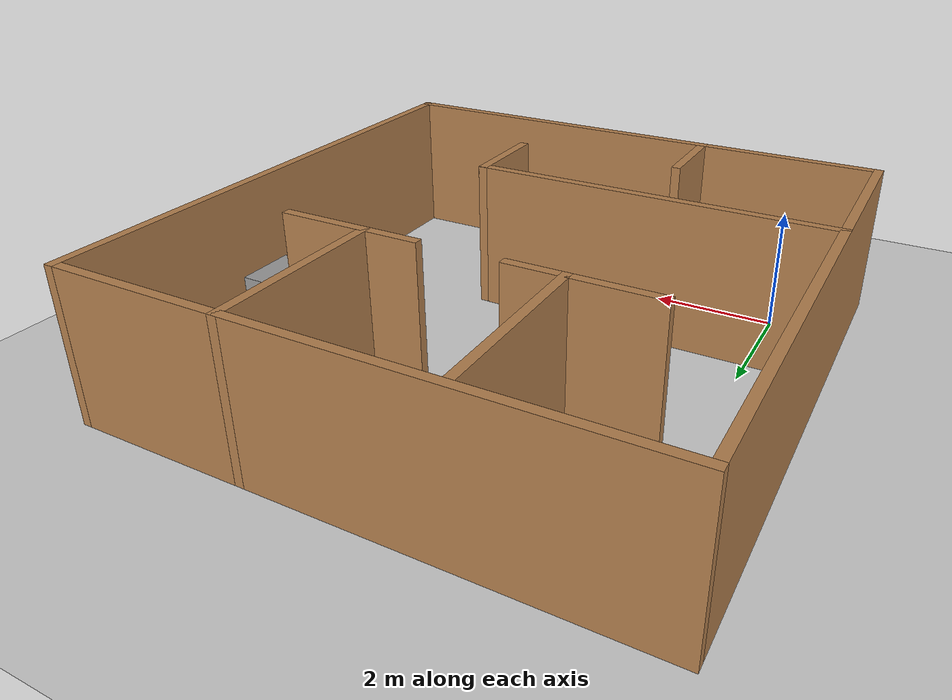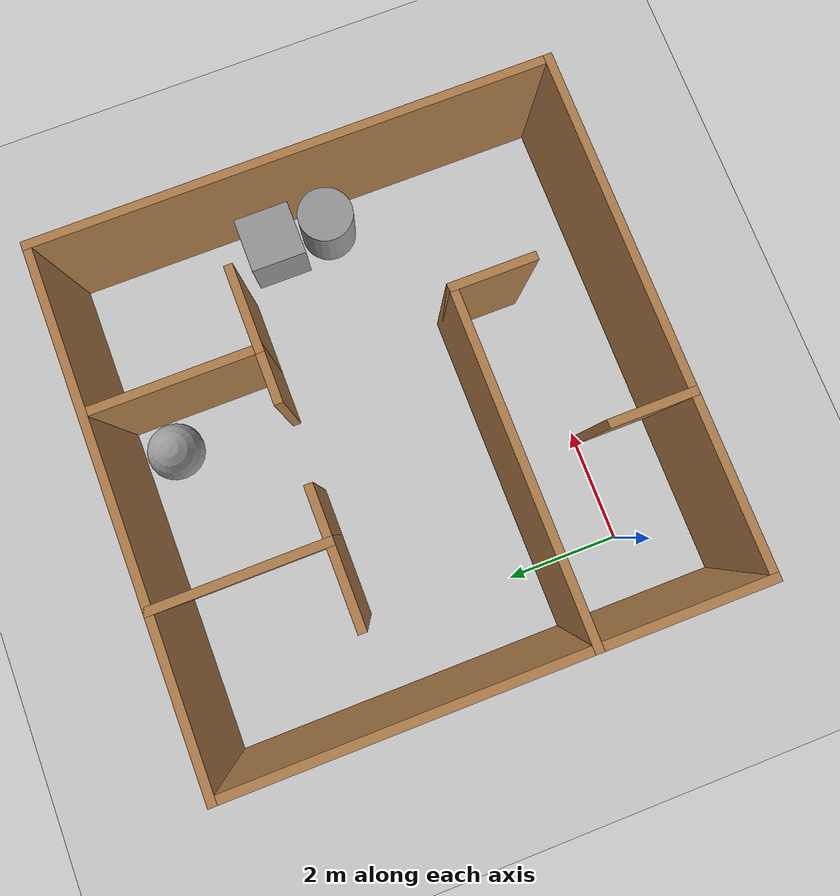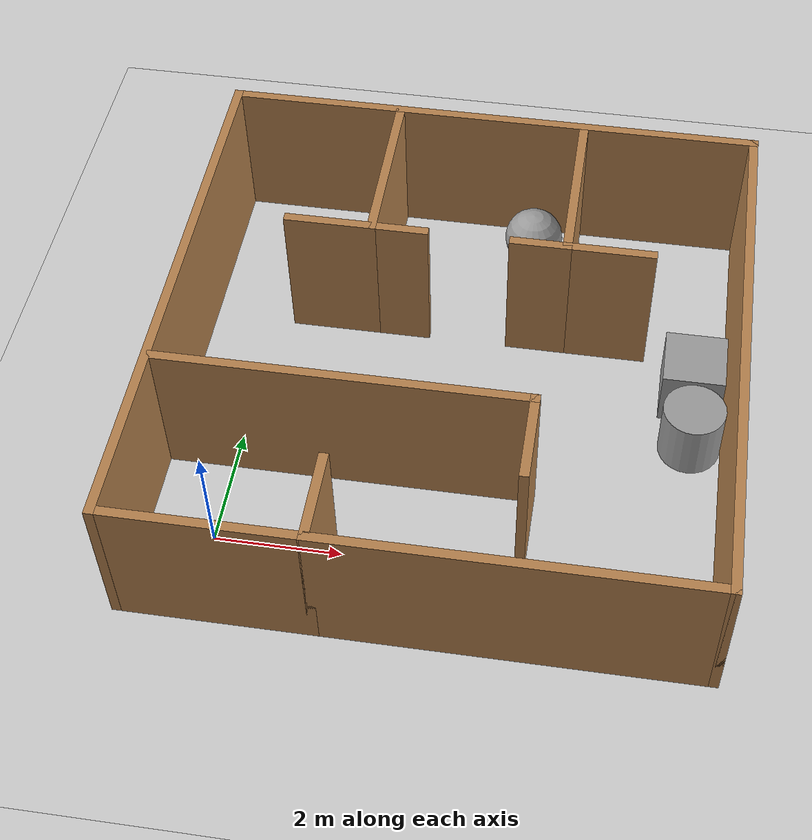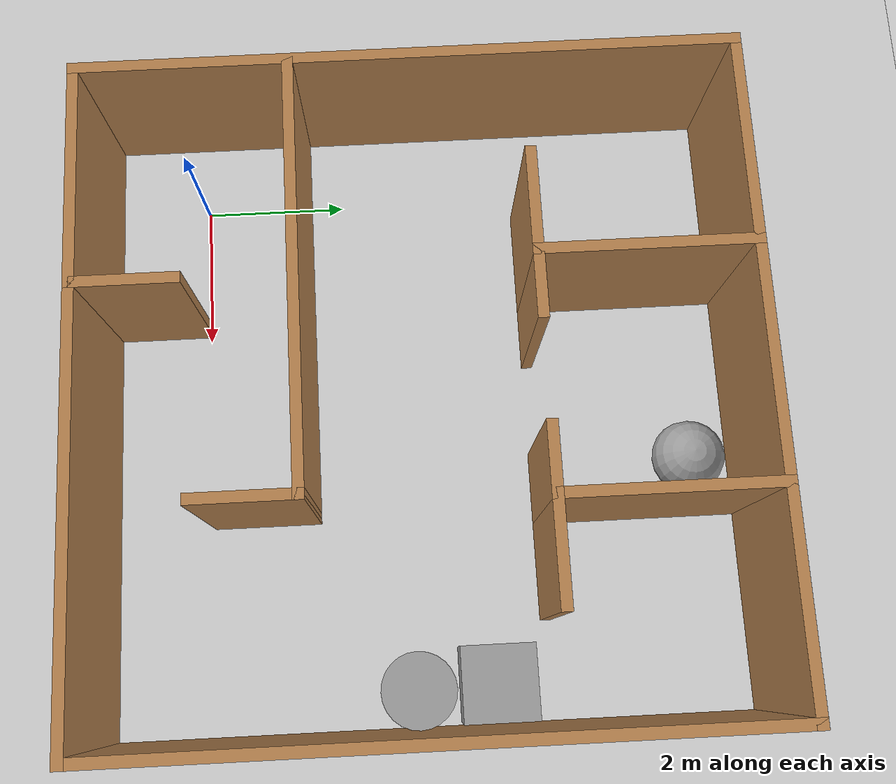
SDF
<sdf version="1.6">
 <world name="default">
  <light name="sun" type="directional">
   <pose>0 0 10 0 -0 0</pose>
   <diffuse>0.8 0.8 0.8 1</diffuse>
   <specular>0.2 0.2 0.2 1</specular>
   <attenuation>
    <range>1000</range>
    <constant>0.9</constant>
    <linear>0.01</linear>
    <quadratic>0.001</quadratic>
   </attenuation>
   <direction>-0.5 0.1 -0.9</direction>
  </light>
  <model name="ground_plane">
   <static>1</static>
   <link name="link">
    <collision name="collision">
     <geometry><plane><normal>0 0 1</normal><size>100 100</size></plane></geometry>
     <surface>
      <contact><collide_bitmask>65535</collide_bitmask></contact>
      <friction><ode><mu>100</mu><mu2>50</mu2></ode></friction>
     </surface>
    </collision>
    <visual name="visual">
     <cast_shadows>0</cast_shadows>
     <geometry><plane><normal>0 0 1</normal><size>100 100</size></plane></geometry>
     <material>
      <script><uri>file://media/materials/scripts/gazebo.material</uri><name>Gazebo/Grey</name></script>
     </material>
    </visual>
   </link>
  </model>
  <gravity>0 0 -9.8</gravity>
  <magnetic_field>6e-06 2.3e-05 -4.2e-05</magnetic_field>
  <atmosphere type="adiabatic"/>
  <physics name="default_physics" default="0" type="ode">
   <max_step_size>0.001</max_step_size>
   <real_time_factor>1</real_time_factor>
   <real_time_update_rate>1000</real_time_update_rate>
  </physics>
  <scene><ambient>0.4 0.4 0.4 1</ambient><background>0.7 0.7 0.7 1</background><shadows>1</shadows></scene>
  <audio><device>default</device></audio>
  <spherical_coordinates>
   <surface_model>EARTH_WGS84</surface_model>
   <latitude_deg>0</latitude_deg>
   <longitude_deg>0</longitude_deg>
   <elevation>0</elevation>
   <heading_deg>0</heading_deg>
  </spherical_coordinates>
  <model name="woody">
   <pose>3.28807 3.04448 0 0 -0 0</pose>
   <link name="Wall_10">
    <collision name="Wall_10_Collision">
     <geometry><box><size>9 0.15 2.5</size></box></geometry>
     <pose>0 0 1.25 0 -0 0</pose>
    </collision>
    <visual name="Wall_10_Visual">
     <pose>0 0 1.25 0 -0 0</pose>
     <geometry><box><size>9 0.15 2.5</size></box></geometry>
     <material>
      <script><uri>file://media/materials/scripts/gazebo.material</uri><name>Gazebo/Wood</name></script>
      <ambient>1 1 1 1</ambient>
     </material>
     <meta><layer>0</layer></meta>
    </visual>
    <pose>-0 4.425 0 0 -0 3.14159</pose>
   </link>
   <link name="Wall_13">
    <collision name="Wall_13_Collision">
     <geometry><box><size>6 0.15 2.5</size></box></geometry>
     <pose>0 0 1.25 0 -0 0</pose>
    </collision>
    <visual name="Wall_13_Visual">
     <pose>0 0 1.25 0 -0 0</pose>
     <geometry><box><size>6 0.15 2.5</size></box></geometry>
     <material>
      <script><uri>file://media/materials/scripts/gazebo.material</uri><name>Gazebo/Wood</name></script>
      <ambient>1 1 1 1</ambient>
     </material>
     <meta><layer>0</layer></meta>
    </visual>
    <pose>-1.5 -1.575 0 0 -0 0</pose>
   </link>
   <link name="Wall_14">
    <collision name="Wall_14_Collision">
     <geometry><box><size>1.5 0.15 2.5</size></box></geometry>
     <pose>0 0 1.25 0 -0 0</pose>
    </collision>
    <visual name="Wall_14_Visual">
     <pose>0 0 1.25 0 -0 0</pose>
     <geometry><box><size>1.5 0.15 2.5</size></box></geometry>
     <material>
      <script><uri>file://media/materials/scripts/gazebo.material</uri><name>Gazebo/Wood</name></script>
      <ambient>1 1 1 1</ambient>
     </material>
     <meta><layer>0</layer></meta>
    </visual>
    <pose>1.425 -2.25 0 0 -0 -1.5708</pose>
   </link>
   <link name="Wall_17">
    <collision name="Wall_17_Collision">
     <geometry><box><size>3 0.15 2.5</size></box></geometry>
     <pose>0 0 1.25 0 -0 0</pose>
    </collision>
    <visual name="Wall_17_Visual">
     <pose>0 0 1.25 0 -0 0</pose>
     <geometry><box><size>3 0.15 2.5</size></box></geometry>
     <material>
      <script><uri>file://media/materials/scripts/gazebo.material</uri><name>Gazebo/Wood</name></script>
      <ambient>1 1 1 1</ambient>
     </material>
     <meta><layer>0</layer></meta>
    </visual>
    <pose>-1.575 3 0 0 -0 -1.5708</pose>
   </link>
   <link name="Wall_2">
    <collision name="Wall_2_Collision">
     <geometry><box><size>3 0.15 2.5</size></box></geometry>
     <pose>0 0 1.25 0 -0 0</pose>
    </collision>
    <visual name="Wall_2_Visual">
     <pose>0 0 1.25 0 -0 0</pose>
     <geometry><box><size>3 0.15 2.5</size></box></geometry>
     <material>
      <script><uri>file://media/materials/scripts/gazebo.material</uri><name>Gazebo/Wood</name></script>
      <ambient>1 1 1 1</ambient>
     </material>
     <meta><layer>0</layer></meta>
    </visual>
    <pose>-2.85 -4.425 0 0 -0 0</pose>
   </link>
   <link name="Wall_20">
    <collision name="Wall_20_Collision">
     <geometry><box><size>1 0.15 2.5</size></box></geometry>
     <pose>0 0 1.25 0 -0 0</pose>
    </collision>
    <visual name="Wall_20_Visual">
     <pose>0 0 1.25 0 -0 0</pose>
     <geometry><box><size>1 0.15 2.5</size></box></geometry>
     <material>
      <script><uri>file://media/materials/scripts/gazebo.material</uri><name>Gazebo/Wood</name></script>
      <ambient>1 1 1 1</ambient>
     </material>
     <meta><layer>0</layer></meta>
    </visual>
    <pose>-1.15 1.575 0 0 -0 0</pose>
   </link>
   <link name="Wall_23">
    <collision name="Wall_23_Collision">
     <geometry><box><size>3 0.15 2.5</size></box></geometry>
     <pose>0 0 1.25 0 -0 0</pose>
    </collision>
    <visual name="Wall_23_Visual">
     <pose>0 0 1.25 0 -0 0</pose>
     <geometry><box><size>3 0.15 2.5</size></box></geometry>
     <material>
      <script><uri>file://media/materials/scripts/gazebo.material</uri><name>Gazebo/Wood</name></script>
      <ambient>1 1 1 1</ambient>
     </material>
     <meta><layer>0</layer></meta>
    </visual>
    <pose>1.575 3 0 0 -0 -1.5708</pose>
   </link>
   <link name="Wall_24">
    <collision name="Wall_24_Collision">
     <geometry><box><size>1 0.15 2.5</size></box></geometry>
     <pose>0 0 1.25 0 -0 0</pose>
    </collision>
    <visual name="Wall_24_Visual">
     <pose>0 0 1.25 0 -0 0</pose>
     <geometry><box><size>1 0.15 2.5</size></box></geometry>
     <material>
      <script><uri>file://media/materials/scripts/gazebo.material</uri><name>Gazebo/Wood</name></script>
      <ambient>1 1 1 1</ambient>
     </material>
     <meta><layer>0</layer></meta>
    </visual>
    <pose>1.15 1.575 0 0 -0 3.14159</pose>
   </link>
   <link name="Wall_26">
    <collision name="Wall_26_Collision">
     <geometry><box><size>1.5 0.15 2.5</size></box></geometry>
     <pose>0 0 1.25 0 -0 0</pose>
    </collision>
    <visual name="Wall_26_Visual">
     <pose>0 0 1.25 0 -0 0</pose>
     <geometry><box><size>1.5 0.15 2.5</size></box></geometry>
     <material>
      <script><uri>file://media/materials/scripts/gazebo.material</uri><name>Gazebo/Wood</name></script>
      <ambient>1 1 1 1</ambient>
     </material>
     <meta><layer>0</layer></meta>
    </visual>
    <pose>2.25 1.575 0 0 -0 0</pose>
   </link>
   <link name="Wall_28">
    <collision name="Wall_28_Collision">
     <geometry><box><size>1.5 0.15 2.5</size></box></geometry>
     <pose>0 0 1.25 0 -0 0</pose>
    </collision>
    <visual name="Wall_28_Visual">
     <pose>0 0 1.25 0 -0 0</pose>
     <geometry><box><size>1.5 0.15 2.5</size></box></geometry>
     <material>
      <script><uri>file://media/materials/scripts/gazebo.material</uri><name>Gazebo/Wood</name></script>
      <ambient>1 1 1 1</ambient>
     </material>
     <meta><layer>0</layer></meta>
    </visual>
    <pose>-2.25 1.575 0 0 -0 3.14159</pose>
   </link>
   <link name="Wall_3">
    <collision name="Wall_3_Collision">
     <geometry><box><size>1.5 0.15 2.5</size></box></geometry>
     <pose>0 0 1.25 0 -0 0</pose>
    </collision>
    <visual name="Wall_3_Visual">
     <pose>0 0 1.25 0 -0 0</pose>
     <geometry><box><size>1.5 0.15 2.5</size></box></geometry>
     <material>
      <script><uri>file://media/materials/scripts/gazebo.material</uri><name>Gazebo/Wood</name></script>
      <ambient>1 1 1 1</ambient>
     </material>
     <meta><layer>0</layer></meta>
    </visual>
    <pose>-1.425 -3.75 0 0 -0 1.5708</pose>
   </link>
   <link name="Wall_32">
    <collision name="Wall_32_Collision">
     <geometry><box><size>9 0.15 2.5</size></box></geometry>
     <pose>0 0 1.25 0 -0 0</pose>
    </collision>
    <visual name="Wall_32_Visual">
     <pose>0 0 1.25 0 -0 0</pose>
     <geometry><box><size>9 0.15 2.5</size></box></geometry>
     <material>
      <script><uri>file://media/materials/scripts/gazebo.material</uri><name>Gazebo/Wood</name></script>
      <ambient>1 1 1 1</ambient>
     </material>
     <meta><layer>0</layer></meta>
    </visual>
    <pose>-4.425 0 0 0 -0 -1.5708</pose>
   </link>
   <link name="Wall_5">
    <collision name="Wall_5_Collision">
     <geometry><box><size>6 0.15 2.5</size></box></geometry>
     <pose>0 0 1.25 0 -0 0</pose>
    </collision>
    <visual name="Wall_5_Visual">
     <pose>0 0 1.25 0 -0 0</pose>
     <geometry><box><size>6 0.15 2.5</size></box></geometry>
     <material>
      <script><uri>file://media/materials/scripts/gazebo.material</uri><name>Gazebo/Wood</name></script>
      <ambient>1 1 1 1</ambient>
     </material>
     <meta><layer>0</layer></meta>
    </visual>
    <pose>1.5 -4.425 0 0 -0 0</pose>
   </link>
   <link name="Wall_7">
    <collision name="Wall_7_Collision">
     <geometry><box><size>9 0.15 2.5</size></box></geometry>
     <pose>0 0 1.25 0 -0 0</pose>
    </collision>
    <visual name="Wall_7_Visual">
     <pose>0 0 1.25 0 -0 0</pose>
     <geometry><box><size>9 0.15 2.5</size></box></geometry>
     <material>
      <script><uri>file://media/materials/scripts/gazebo.material</uri><name>Gazebo/Wood</name></script>
      <ambient>1 1 1 1</ambient>
     </material>
     <meta><layer>0</layer></meta>
    </visual>
    <pose>4.425 0 0 0 -0 1.5708</pose>
   </link>
   <static>1</static>
  </model>
  <model name="unit_sphere">
   <pose>4.1616 6.73261 0.5 0 -0 0</pose>
   <link name="link">
    <inertial>
     <mass>1</mass>
     <inertia><ixx>0.1</ixx><ixy>0</ixy><ixz>0</ixz><iyy>0.1</iyy><iyz>0</iyz><izz>0.1</izz></inertia>
    </inertial>
    <collision name="collision"><geometry><sphere><radius>0.5</radius></sphere></geometry></collision>
    <visual name="visual">
     <geometry><sphere><radius>0.5</radius></sphere></geometry>
     <material>
      <script><name>Gazebo/Grey</name><uri>file://media/materials/scripts/gazebo.material</uri></script>
     </material>
    </visual>
   </link>
  </model>
  <model name="unit_box">
   <pose>7.09379 3.87176 0.499995 -1e-05 -0 0</pose>
   <link name="link">
    <inertial>
     <mass>1</mass>
     <inertia>
      <ixx>0.166667</ixx>
      <ixy>0</ixy>
      <ixz>0</ixz>
      <iyy>0.166667</iyy>
      <iyz>0</iyz>
      <izz>0.166667</izz>
     </inertia>
    </inertial>
    <collision name="collision"><geometry><box><size>1 1 1</size></box></geometry></collision>
    <visual name="visual">
     <geometry><box><size>1 1 1</size></box></geometry>
     <material>
      <script><name>Gazebo/Grey</name><uri>file://media/materials/scripts/gazebo.material</uri></script>
     </material>
    </visual>
   </link>
  </model>
  <model name="unit_cylinder">
   <pose>7.13312 2.81589 0.499997 3e-06 4e-06 -0</pose>
   <link name="link">
    <inertial>
     <mass>1</mass>
     <inertia><ixx>0.145833</ixx><ixy>0</ixy><ixz>0</ixz><iyy>0.145833</iyy><iyz>0</iyz><izz>0.125</izz></inertia>
    </inertial>
    <collision name="collision">
     <geometry><cylinder><radius>0.5</radius><length>1</length></cylinder></geometry>
    </collision>
    <visual name="visual">
     <geometry><cylinder><radius>0.5</radius><length>1</length></cylinder></geometry>
     <material>
      <script><name>Gazebo/Grey</name><uri>file://media/materials/scripts/gazebo.material</uri></script>
     </material>
    </visual>
   </link>
  </model>
 </world>
</sdf>
